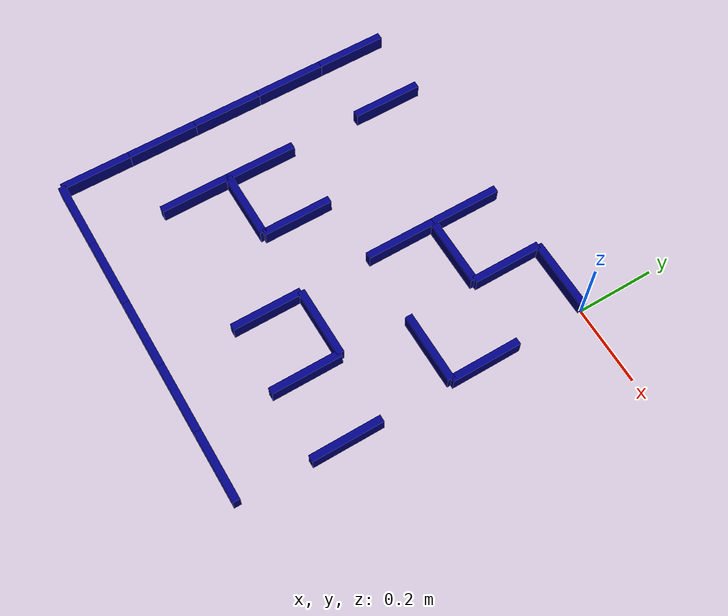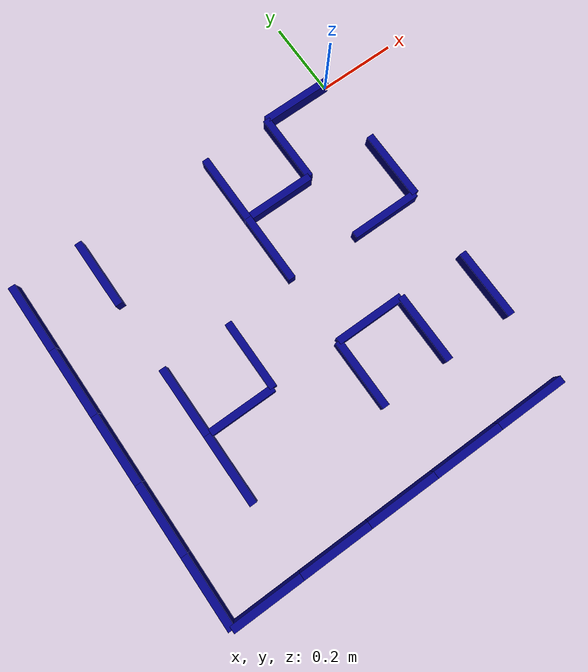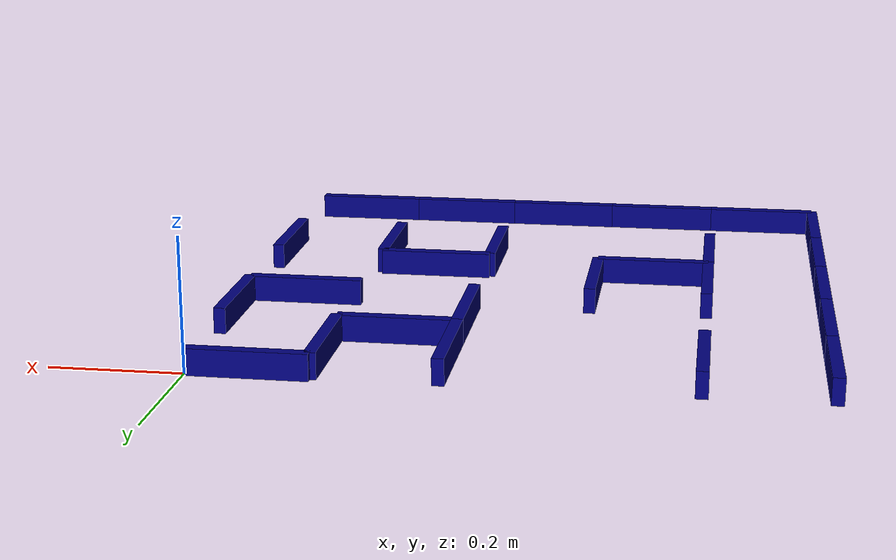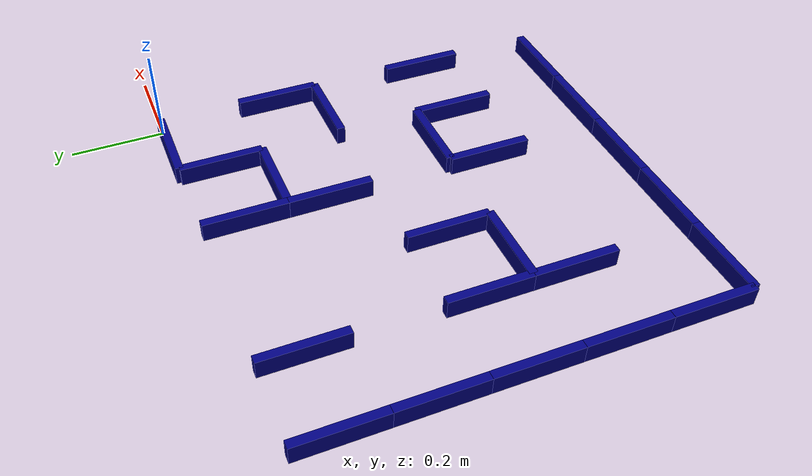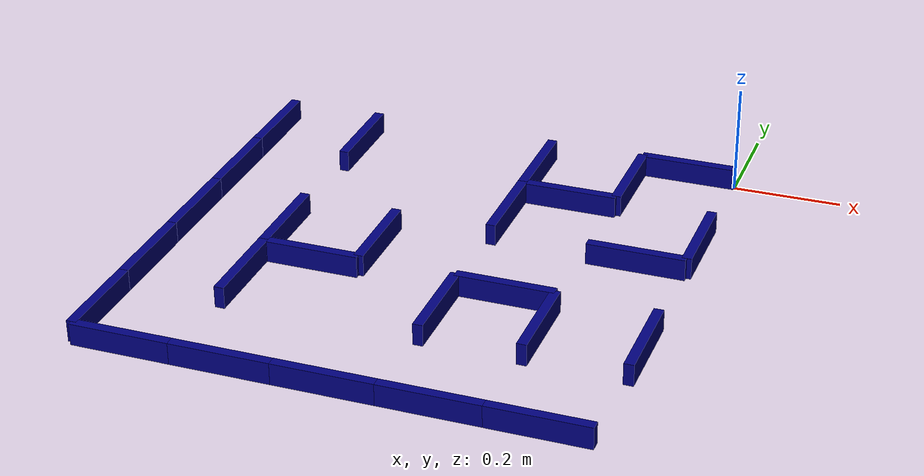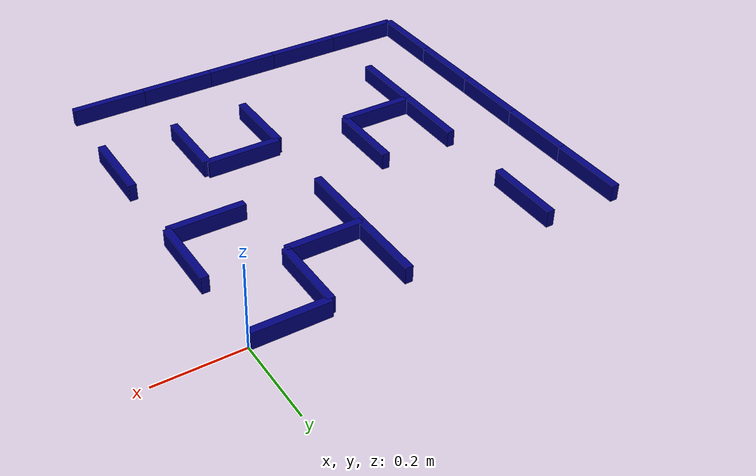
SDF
<sdf version="1.6">
 <world name="room">
  <include><uri>model://sun</uri></include>
  <model name="wall33">
   <static>true</static>
   <pose>-0.72 -0.09 0.02 0 0 0</pose>
   <link name="tile33">
    <pose>0 0 0.001 0 0 0</pose>
    <visual name="visual">
     <geometry><box><size>0.018000000000000002 0.18 0.04</size></box></geometry>
     <material><ambient>0 0 0.5 0</ambient></material>
    </visual>
    <collision name="collision">
     <geometry><box><size>0.018000000000000002 0.18 0.04</size></box></geometry>
    </collision>
   </link>
  </model>
  <model name="wall34">
   <static>true</static>
   <pose>-0.36 -0.09 0.02 0 0 0</pose>
   <link name="tile34">
    <pose>0 0 0.001 0 0 0</pose>
    <visual name="visual">
     <geometry><box><size>0.018000000000000002 0.18 0.04</size></box></geometry>
     <material><ambient>0 0 0.5 0</ambient></material>
    </visual>
    <collision name="collision">
     <geometry><box><size>0.018000000000000002 0.18 0.04</size></box></geometry>
    </collision>
   </link>
  </model>
  <model name="wall35">
   <static>true</static>
   <pose>-0.18 -0.09 0.02 0 0 0</pose>
   <link name="tile35">
    <pose>0 0 0.001 0 0 0</pose>
    <visual name="visual">
     <geometry><box><size>0.018000000000000002 0.18 0.04</size></box></geometry>
     <material><ambient>0 0 0.5 0</ambient></material>
    </visual>
    <collision name="collision">
     <geometry><box><size>0.018000000000000002 0.18 0.04</size></box></geometry>
    </collision>
   </link>
  </model>
  <model name="wall36">
   <static>true</static>
   <pose>-0.09 0.0 0.02 0 0 0</pose>
   <link name="tile36">
    <pose>0 0 0.001 0 0 0</pose>
    <visual name="visual">
     <geometry><box><size>0.18 0.018000000000000002 0.04</size></box></geometry>
     <material><ambient>0 0 0.5 0</ambient></material>
    </visual>
    <collision name="collision">
     <geometry><box><size>0.18 0.018000000000000002 0.04</size></box></geometry>
    </collision>
   </link>
  </model>
  <model name="wall41">
   <static>true</static>
   <pose>-0.36 -0.27 0.02 0 0 0</pose>
   <link name="tile41">
    <pose>0 0 0.001 0 0 0</pose>
    <visual name="visual">
     <geometry><box><size>0.018000000000000002 0.18 0.04</size></box></geometry>
     <material><ambient>0 0 0.5 0</ambient></material>
    </visual>
    <collision name="collision">
     <geometry><box><size>0.018000000000000002 0.18 0.04</size></box></geometry>
    </collision>
   </link>
  </model>
  <model name="wall42">
   <static>true</static>
   <pose>-0.27 -0.18 0.02 0 0 0</pose>
   <link name="tile42">
    <pose>0 0 0.001 0 0 0</pose>
    <visual name="visual">
     <geometry><box><size>0.18 0.018000000000000002 0.04</size></box></geometry>
     <material><ambient>0 0 0.5 0</ambient></material>
    </visual>
    <collision name="collision">
     <geometry><box><size>0.18 0.018000000000000002 0.04</size></box></geometry>
    </collision>
   </link>
  </model>
  <model name="wall43">
   <static>true</static>
   <pose>0.0 -0.27 0.02 0 0 0</pose>
   <link name="tile43">
    <pose>0 0 0.001 0 0 0</pose>
    <visual name="visual">
     <geometry><box><size>0.018000000000000002 0.18 0.04</size></box></geometry>
     <material><ambient>0 0 0.5 0</ambient></material>
    </visual>
    <collision name="collision">
     <geometry><box><size>0.018000000000000002 0.18 0.04</size></box></geometry>
    </collision>
   </link>
  </model>
  <model name="wall47">
   <static>true</static>
   <pose>-0.72 -0.45 0.02 0 0 0</pose>
   <link name="tile47">
    <pose>0 0 0.001 0 0 0</pose>
    <visual name="visual">
     <geometry><box><size>0.018000000000000002 0.18 0.04</size></box></geometry>
     <material><ambient>0 0 0.5 0</ambient></material>
    </visual>
    <collision name="collision">
     <geometry><box><size>0.018000000000000002 0.18 0.04</size></box></geometry>
    </collision>
   </link>
  </model>
  <model name="wall48">
   <static>true</static>
   <pose>-0.54 -0.45 0.02 0 0 0</pose>
   <link name="tile48">
    <pose>0 0 0.001 0 0 0</pose>
    <visual name="visual">
     <geometry><box><size>0.018000000000000002 0.18 0.04</size></box></geometry>
     <material><ambient>0 0 0.5 0</ambient></material>
    </visual>
    <collision name="collision">
     <geometry><box><size>0.018000000000000002 0.18 0.04</size></box></geometry>
    </collision>
   </link>
  </model>
  <model name="wall49">
   <static>true</static>
   <pose>-0.27 -0.54 0.02 0 0 0</pose>
   <link name="tile49">
    <pose>0 0 0.001 0 0 0</pose>
    <visual name="visual">
     <geometry><box><size>0.18 0.018000000000000002 0.04</size></box></geometry>
     <material><ambient>0 0 0.5 0</ambient></material>
    </visual>
    <collision name="collision">
     <geometry><box><size>0.18 0.018000000000000002 0.04</size></box></geometry>
    </collision>
   </link>
  </model>
  <model name="wall50">
   <static>true</static>
   <pose>-0.09 -0.36 0.02 0 0 0</pose>
   <link name="tile50">
    <pose>0 0 0.001 0 0 0</pose>
    <visual name="visual">
     <geometry><box><size>0.18 0.018000000000000002 0.04</size></box></geometry>
     <material><ambient>0 0 0.5 0</ambient></material>
    </visual>
    <collision name="collision">
     <geometry><box><size>0.18 0.018000000000000002 0.04</size></box></geometry>
    </collision>
   </link>
  </model>
  <model name="wall55">
   <static>true</static>
   <pose>-0.72 -0.63 0.02 0 0 0</pose>
   <link name="tile55">
    <pose>0 0 0.001 0 0 0</pose>
    <visual name="visual">
     <geometry><box><size>0.018000000000000002 0.18 0.04</size></box></geometry>
     <material><ambient>0 0 0.5 0</ambient></material>
    </visual>
    <collision name="collision">
     <geometry><box><size>0.018000000000000002 0.18 0.04</size></box></geometry>
    </collision>
   </link>
  </model>
  <model name="wall56">
   <static>true</static>
   <pose>-0.63 -0.54 0.02 0 0 0</pose>
   <link name="tile56">
    <pose>0 0 0.001 0 0 0</pose>
    <visual name="visual">
     <geometry><box><size>0.18 0.018000000000000002 0.04</size></box></geometry>
     <material><ambient>0 0 0.5 0</ambient></material>
    </visual>
    <collision name="collision">
     <geometry><box><size>0.18 0.018000000000000002 0.04</size></box></geometry>
    </collision>
   </link>
  </model>
  <model name="wall57">
   <static>true</static>
   <pose>-0.36 -0.63 0.02 0 0 0</pose>
   <link name="tile57">
    <pose>0 0 0.001 0 0 0</pose>
    <visual name="visual">
     <geometry><box><size>0.018000000000000002 0.18 0.04</size></box></geometry>
     <material><ambient>0 0 0.5 0</ambient></material>
    </visual>
    <collision name="collision">
     <geometry><box><size>0.018000000000000002 0.18 0.04</size></box></geometry>
    </collision>
   </link>
  </model>
  <model name="wall58">
   <static>true</static>
   <pose>-0.18 -0.63 0.02 0 0 0</pose>
   <link name="tile58">
    <pose>0 0 0.001 0 0 0</pose>
    <visual name="visual">
     <geometry><box><size>0.018000000000000002 0.18 0.04</size></box></geometry>
     <material><ambient>0 0 0.5 0</ambient></material>
    </visual>
    <collision name="collision">
     <geometry><box><size>0.018000000000000002 0.18 0.04</size></box></geometry>
    </collision>
   </link>
  </model>
  <model name="wall59">
   <static>true</static>
   <pose>0.0 -0.63 0.02 0 0 0</pose>
   <link name="tile59">
    <pose>0 0 0.001 0 0 0</pose>
    <visual name="visual">
     <geometry><box><size>0.018000000000000002 0.18 0.04</size></box></geometry>
     <material><ambient>0 0 0.5 0</ambient></material>
    </visual>
    <collision name="collision">
     <geometry><box><size>0.018000000000000002 0.18 0.04</size></box></geometry>
    </collision>
   </link>
  </model>
  <model name="wall74">
   <static>true</static>
   <pose>-0.81 -0.9 0.02 0 0 0</pose>
   <link name="tile74">
    <pose>0 0 0.001 0 0 0</pose>
    <visual name="visual">
     <geometry><box><size>0.18 0.018000000000000002 0.04</size></box></geometry>
     <material><ambient>0 0 0.5 0</ambient></material>
    </visual>
    <collision name="collision">
     <geometry><box><size>0.18 0.018000000000000002 0.04</size></box></geometry>
    </collision>
   </link>
  </model>
  <model name="wall75">
   <static>true</static>
   <pose>-0.63 -0.9 0.02 0 0 0</pose>
   <link name="tile75">
    <pose>0 0 0.001 0 0 0</pose>
    <visual name="visual">
     <geometry><box><size>0.18 0.018000000000000002 0.04</size></box></geometry>
     <material><ambient>0 0 0.5 0</ambient></material>
    </visual>
    <collision name="collision">
     <geometry><box><size>0.18 0.018000000000000002 0.04</size></box></geometry>
    </collision>
   </link>
  </model>
  <model name="wall76">
   <static>true</static>
   <pose>-0.45 -0.9 0.02 0 0 0</pose>
   <link name="tile76">
    <pose>0 0 0.001 0 0 0</pose>
    <visual name="visual">
     <geometry><box><size>0.18 0.018000000000000002 0.04</size></box></geometry>
     <material><ambient>0 0 0.5 0</ambient></material>
    </visual>
    <collision name="collision">
     <geometry><box><size>0.18 0.018000000000000002 0.04</size></box></geometry>
    </collision>
   </link>
  </model>
  <model name="wall77">
   <static>true</static>
   <pose>-0.27 -0.9 0.02 0 0 0</pose>
   <link name="tile77">
    <pose>0 0 0.001 0 0 0</pose>
    <visual name="visual">
     <geometry><box><size>0.18 0.018000000000000002 0.04</size></box></geometry>
     <material><ambient>0 0 0.5 0</ambient></material>
    </visual>
    <collision name="collision">
     <geometry><box><size>0.18 0.018000000000000002 0.04</size></box></geometry>
    </collision>
   </link>
  </model>
  <model name="wall78">
   <static>true</static>
   <pose>-0.09 -0.9 0.02 0 0 0</pose>
   <link name="tile78">
    <pose>0 0 0.001 0 0 0</pose>
    <visual name="visual">
     <geometry><box><size>0.18 0.018000000000000002 0.04</size></box></geometry>
     <material><ambient>0 0 0.5 0</ambient></material>
    </visual>
    <collision name="collision">
     <geometry><box><size>0.18 0.018000000000000002 0.04</size></box></geometry>
    </collision>
   </link>
  </model>
  <model name="wall89">
   <static>true</static>
   <pose>-0.9 -0.09 0.02 0 0 0</pose>
   <link name="tile89">
    <pose>0 0 0.001 0 0 0</pose>
    <visual name="visual">
     <geometry><box><size>0.018000000000000002 0.18 0.04</size></box></geometry>
     <material><ambient>0 0 0.5 0</ambient></material>
    </visual>
    <collision name="collision">
     <geometry><box><size>0.018000000000000002 0.18 0.04</size></box></geometry>
    </collision>
   </link>
  </model>
  <model name="wall90">
   <static>true</static>
   <pose>-0.9 -0.27 0.02 0 0 0</pose>
   <link name="tile90">
    <pose>0 0 0.001 0 0 0</pose>
    <visual name="visual">
     <geometry><box><size>0.018000000000000002 0.18 0.04</size></box></geometry>
     <material><ambient>0 0 0.5 0</ambient></material>
    </visual>
    <collision name="collision">
     <geometry><box><size>0.018000000000000002 0.18 0.04</size></box></geometry>
    </collision>
   </link>
  </model>
  <model name="wall91">
   <static>true</static>
   <pose>-0.9 -0.45 0.02 0 0 0</pose>
   <link name="tile91">
    <pose>0 0 0.001 0 0 0</pose>
    <visual name="visual">
     <geometry><box><size>0.018000000000000002 0.18 0.04</size></box></geometry>
     <material><ambient>0 0 0.5 0</ambient></material>
    </visual>
    <collision name="collision">
     <geometry><box><size>0.018000000000000002 0.18 0.04</size></box></geometry>
    </collision>
   </link>
  </model>
  <model name="wall92">
   <static>true</static>
   <pose>-0.9 -0.63 0.02 0 0 0</pose>
   <link name="tile92">
    <pose>0 0 0.001 0 0 0</pose>
    <visual name="visual">
     <geometry><box><size>0.018000000000000002 0.18 0.04</size></box></geometry>
     <material><ambient>0 0 0.5 0</ambient></material>
    </visual>
    <collision name="collision">
     <geometry><box><size>0.018000000000000002 0.18 0.04</size></box></geometry>
    </collision>
   </link>
  </model>
  <model name="wall93">
   <static>true</static>
   <pose>-0.9 -0.81 0.02 0 0 0</pose>
   <link name="tile93">
    <pose>0 0 0.001 0 0 0</pose>
    <visual name="visual">
     <geometry><box><size>0.018000000000000002 0.18 0.04</size></box></geometry>
     <material><ambient>0 0 0.5 0</ambient></material>
    </visual>
    <collision name="collision">
     <geometry><box><size>0.018000000000000002 0.18 0.04</size></box></geometry>
    </collision>
   </link>
  </model>
 </world>
</sdf>
